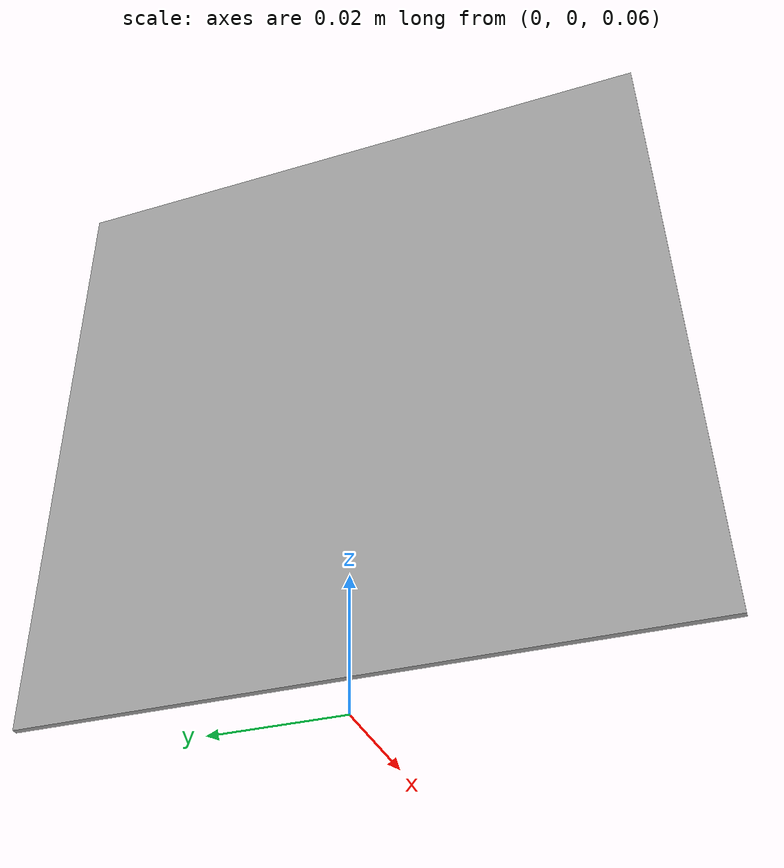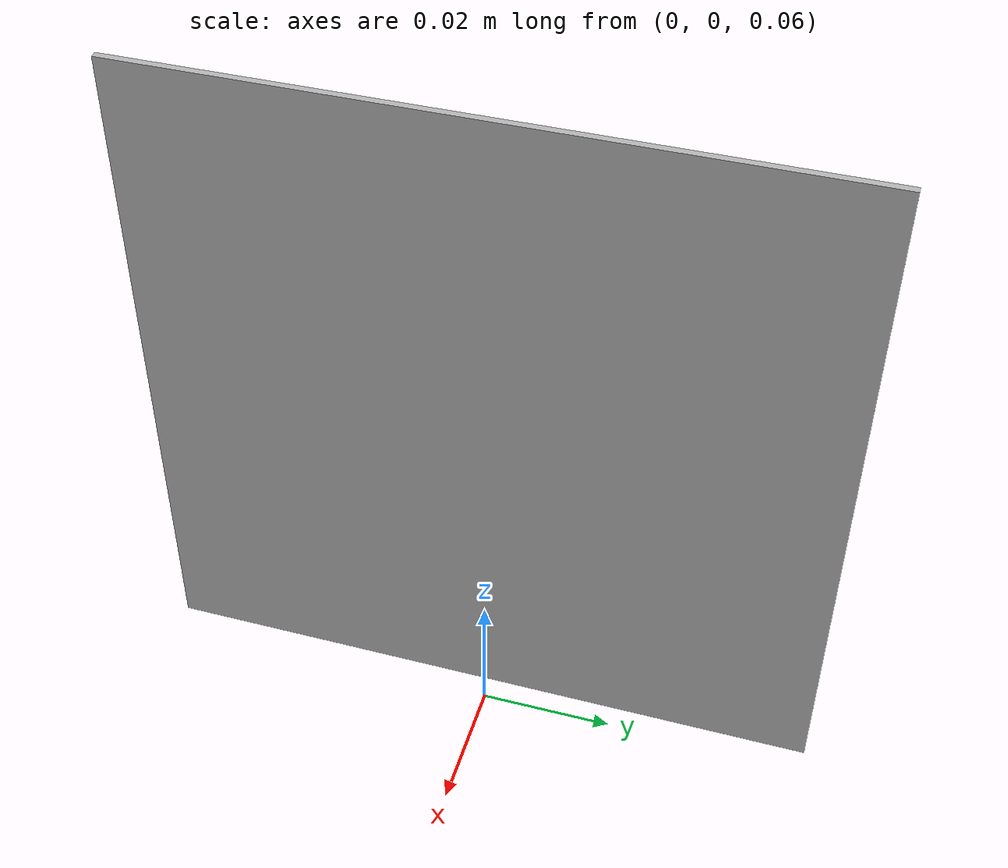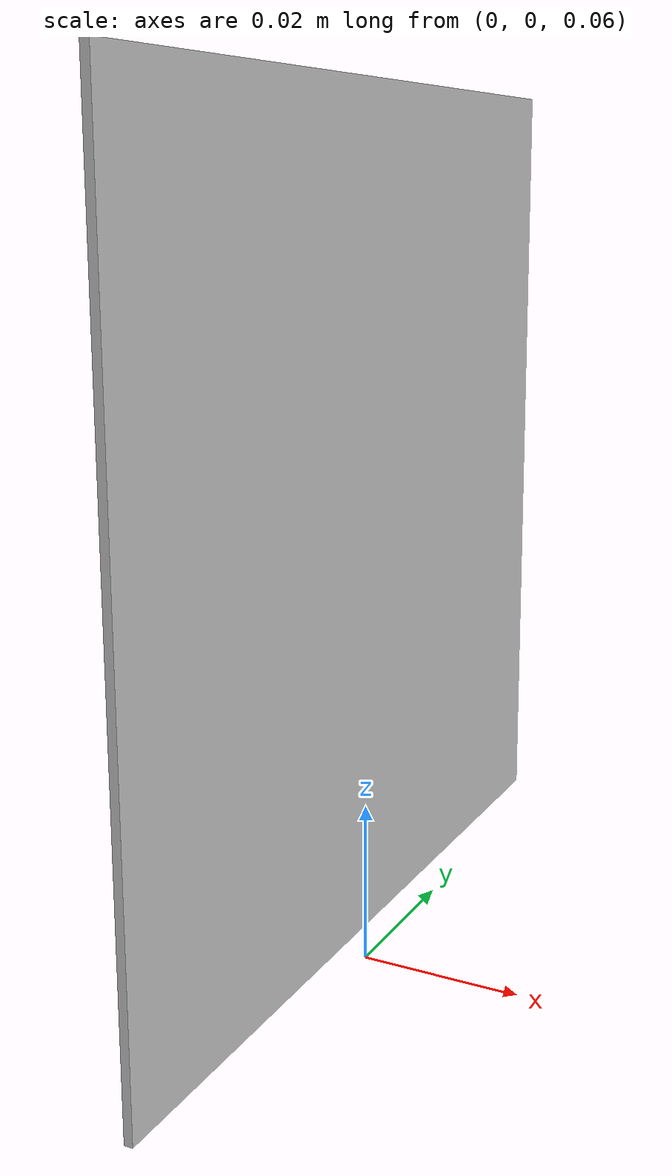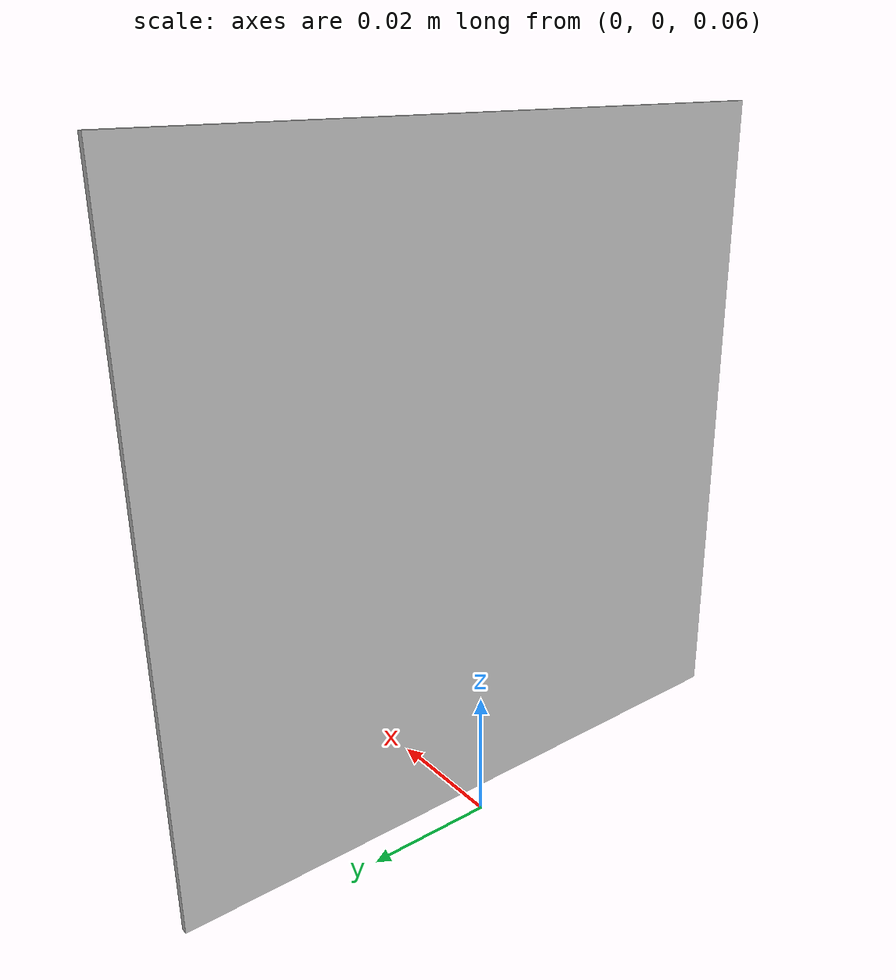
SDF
<?xml version="1.0" ?>
<sdf version="1.5">
  <model name="apriltag_plate">
    <link name="link">
      <pose>0 0 0.115 0 0 0</pose>
      <inertial>
        <mass>0.390</mass>
        <inertia>
          <ixx>0.00058</ixx>
          <ixy>0</ixy>
          <ixz>0</ixz>
          <iyy>0.00058</iyy>
          <iyz>0</iyz>
          <izz>0.00019</izz>
        </inertia>
      </inertial>
      <collision name="collision">
        <geometry>
          <box>
            <size>0.001 0.1 0.1</size>
          </box>
        </geometry>
      </collision>
      <visual name="visual">
        <geometry>
          <box>
            <size>0.001 0.1 0.1</size>
          </box>
        </geometry>
        <material>
          <script>
            <uri>model://apriltag_plate/materials/scripts</uri>
            <uri>model://apriltag_plate/materials/textures</uri>
            <name>apriltag_plate/Diffuse</name>
          </script>
        </material>
      </visual>
    </link>
  </model>
</sdf>
